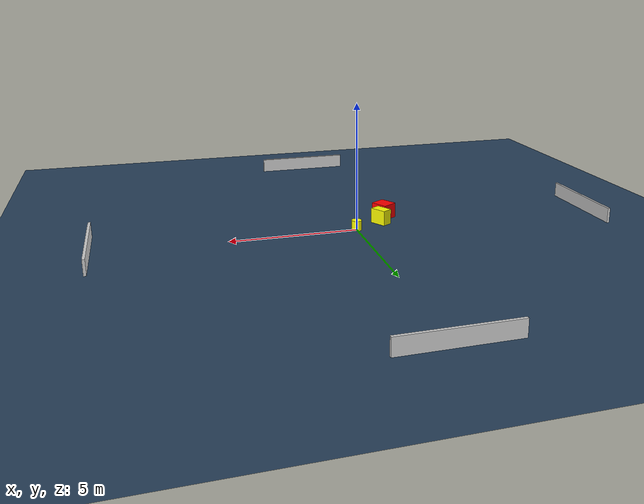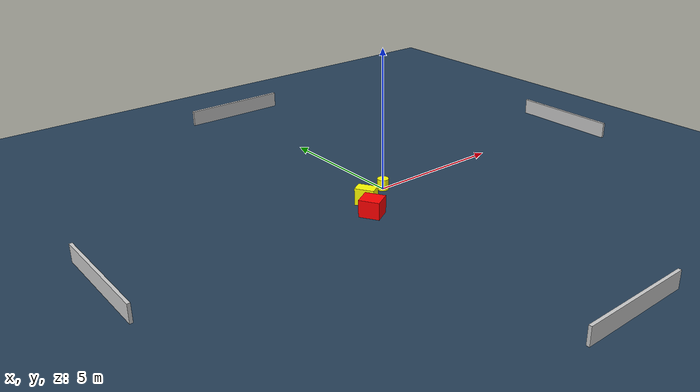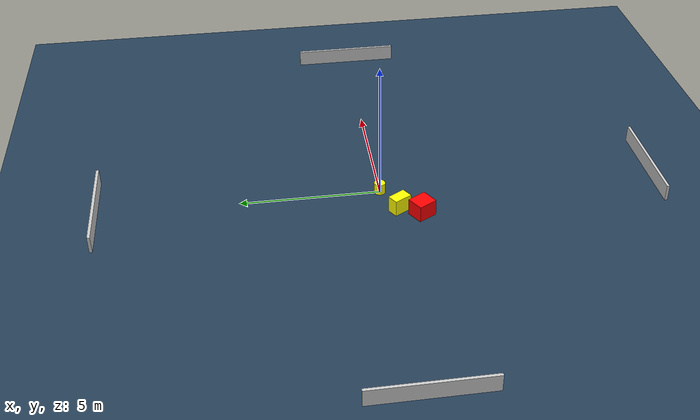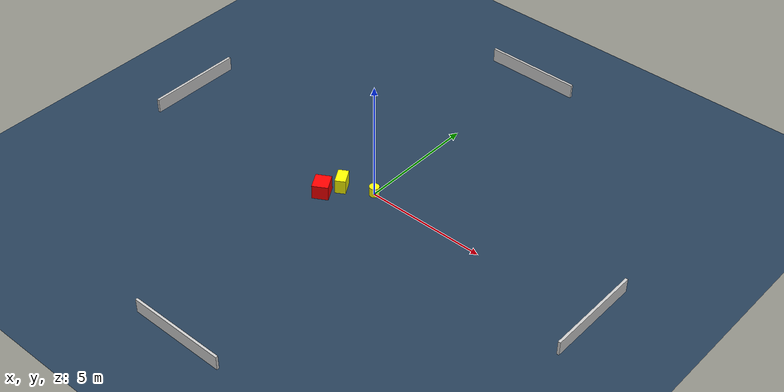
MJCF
<?xml version="1.0" ?>
<mujoco model="generated_environment">
  <option timestep="0.01" integrator="RK4" cone="elliptic"/>
  <default>
    <geom density="1"/>
  </default>
  <asset>
    <texture builtin="gradient" height="3072" name="skybox" rgb1="0.3 0.5 0.7" rgb2="0 0 0" type="skybox" width="512"/>
    <texture builtin="checker" height="300" name="groundplane" rgb1="0.2 0.3 0.4" rgb2="0.1 0.2 0.3" type="2d" width="300"/>
    <material name="groundplane" reflectance="0.2" texrepeat="5 5" texture="groundplane"/>
  </asset>
  <worldbody>
    <light dir="0 0 -1" directional="true" pos="0 0 1.5"/>
    <geom condim="3" friction="0.5 0.005 0.001" material="groundplane" name="floor" pos="0 0 0" size="0 0 0.05" type="plane"/>
    <body name="walls">
      <geom name="wall_1" condim="4" pos="-10.0 0.0 0.3" rgba="0.800000011920929 0.800000011920929 0.800000011920929 1.0" size="0.05 2.0 0.3" type="box"/>
      <geom name="wall_2" condim="4" pos="10.0 0.0 0.3" rgba="0.800000011920929 0.800000011920929 0.800000011920929 1.0" size="0.05 2.0 0.3" type="box"/>
      <geom name="wall_3" condim="4" pos="0.0 -10.0 0.3" rgba="0.800000011920929 0.800000011920929 0.800000011920929 1.0" size="2.0 0.05 0.3" type="box"/>
      <geom name="wall_4" condim="4" pos="0.0 10.0 0.3" rgba="0.800000011920929 0.800000011920929 0.800000011920929 1.0" size="2.0 0.05 0.3" type="box"/>
    </body>
    <body name="robot">
      <joint name="joint_x" type="slide" pos="0 0 0" axis="1 0 0"/>
      <joint name="joint_y" type="slide" pos="0 0 0" axis="0 1 0"/>
      <geom name="robot" type="cylinder" pos="0.0 0.0 0.2" size="0.2 0.2 0.0" mass="5.0" friction="1.0 0.005 0.0001" condim="4" rgba="1.0 1.0 0.0 1.0"/>
    </body>
    <body name="obstacle_1_movable">
      <geom name="obstacle_1_movable" condim="4" pos="-1.1779412823102653 -0.5299821217575145 0.3" euler="0 0 120.9099939992968" friction="0.0 0.005 0.001" rgba="1.0 1.0 0.0 1.0" size="0.3379273974621573 0.21022719409669124 0.3" type="box" mass="0.1"/>
      <joint type="free"/>
    </body>
    <body name="obstacle_2_static">
      <geom name="obstacle_2_static" condim="4" pos="-1.5282215908431542 -1.2667872352699094 0.3" euler="0 0 30.458966209072127" friction="0.0 0.005 0.001" rgba="1.0 0.0 0.0 1.0" size="0.31968308182611116 0.35703334014201293 0.3" type="box"/>
    </body>
  </worldbody>
  <actuator>
    <motor name="actuator_x" joint="joint_x" gear="1" ctrlrange="-1 1"/>
    <motor name="actuator_y" joint="joint_y" gear="1" ctrlrange="-1 1"/>
  </actuator>
</mujoco>
